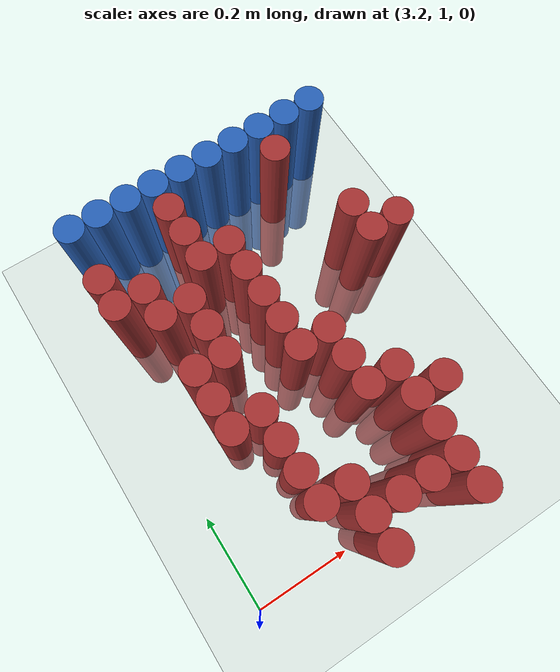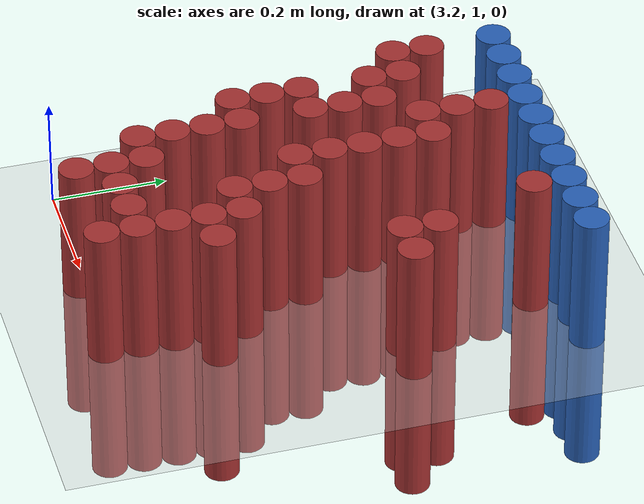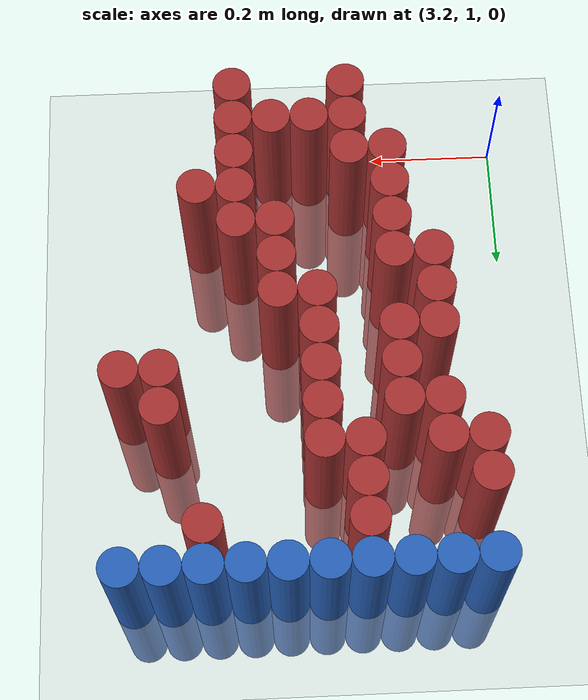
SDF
<sdf version="1.6">
 <world name="default">
  <model name="ground_plane">
   <static>1</static>
   <link name="link">
    <collision name="collision">
     <geometry><plane><normal>0 0 1</normal><size>100 100</size></plane></geometry>
     <surface><friction><ode><mu>100</mu><mu2>50</mu2></ode></friction></surface>
    </collision>
    <visual name="visual">
     <cast_shadows>0</cast_shadows>
     <geometry><plane><normal>0 0 1</normal><size>100 100</size></plane></geometry>
     <material>
      <script><uri>file://media/materials/scripts/gazebo.material</uri><name>Gazebo/Grey</name></script>
     </material>
    </visual>
   </link>
  </model>
  <model name="unit_cylinder_115">
   <static>1</static>
   <pose>3.270000 1.770000 0.000000 0.000000 0.000000 0.000000</pose>
   <link name="link">
    <inertial>
     <mass>1</mass>
     <inertia><ixx>0.145833</ixx><ixy>0</ixy><ixz>0</ixz><iyy>0.145833</iyy><iyz>0</iyz><izz>0.125</izz></inertia>
    </inertial>
    <collision name="collision">
     <geometry><cylinder><radius>0.030000</radius><length>0.5</length></cylinder></geometry>
    </collision>
    <visual name="visual">
     <geometry><cylinder><radius>0.030000</radius><length>0.5</length></cylinder></geometry>
     <material>
      <ambient>0.152000 0.379000 0.720000 1</ambient>
      <diffuse>0.152000 0.379000 0.720000 1</diffuse>
     </material>
     <material>
      <script><name>Gazebo/Grey</name><uri>file://media/materials/scripts/gazebo.material</uri></script>
     </material>
    </visual>
   </link>
  </model>
  <model name="unit_cylinder_116">
   <static>1</static>
   <pose>3.330000 1.770000 0.000000 0.000000 0.000000 0.000000</pose>
   <link name="link">
    <inertial>
     <mass>1</mass>
     <inertia><ixx>0.145833</ixx><ixy>0</ixy><ixz>0</ixz><iyy>0.145833</iyy><iyz>0</iyz><izz>0.125</izz></inertia>
    </inertial>
    <collision name="collision">
     <geometry><cylinder><radius>0.030000</radius><length>0.5</length></cylinder></geometry>
    </collision>
    <visual name="visual">
     <geometry><cylinder><radius>0.030000</radius><length>0.5</length></cylinder></geometry>
     <material>
      <ambient>0.152000 0.379000 0.720000 1</ambient>
      <diffuse>0.152000 0.379000 0.720000 1</diffuse>
     </material>
     <material>
      <script><name>Gazebo/Grey</name><uri>file://media/materials/scripts/gazebo.material</uri></script>
     </material>
    </visual>
   </link>
  </model>
  <model name="unit_cylinder_117">
   <static>1</static>
   <pose>3.390000 1.770000 0.000000 0.000000 0.000000 0.000000</pose>
   <link name="link">
    <inertial>
     <mass>1</mass>
     <inertia><ixx>0.145833</ixx><ixy>0</ixy><ixz>0</ixz><iyy>0.145833</iyy><iyz>0</iyz><izz>0.125</izz></inertia>
    </inertial>
    <collision name="collision">
     <geometry><cylinder><radius>0.030000</radius><length>0.5</length></cylinder></geometry>
    </collision>
    <visual name="visual">
     <geometry><cylinder><radius>0.030000</radius><length>0.5</length></cylinder></geometry>
     <material>
      <ambient>0.152000 0.379000 0.720000 1</ambient>
      <diffuse>0.152000 0.379000 0.720000 1</diffuse>
     </material>
     <material>
      <script><name>Gazebo/Grey</name><uri>file://media/materials/scripts/gazebo.material</uri></script>
     </material>
    </visual>
   </link>
  </model>
  <model name="unit_cylinder_118">
   <static>1</static>
   <pose>3.450000 1.770000 0.000000 0.000000 0.000000 0.000000</pose>
   <link name="link">
    <inertial>
     <mass>1</mass>
     <inertia><ixx>0.145833</ixx><ixy>0</ixy><ixz>0</ixz><iyy>0.145833</iyy><iyz>0</iyz><izz>0.125</izz></inertia>
    </inertial>
    <collision name="collision">
     <geometry><cylinder><radius>0.030000</radius><length>0.5</length></cylinder></geometry>
    </collision>
    <visual name="visual">
     <geometry><cylinder><radius>0.030000</radius><length>0.5</length></cylinder></geometry>
     <material>
      <ambient>0.152000 0.379000 0.720000 1</ambient>
      <diffuse>0.152000 0.379000 0.720000 1</diffuse>
     </material>
     <material>
      <script><name>Gazebo/Grey</name><uri>file://media/materials/scripts/gazebo.material</uri></script>
     </material>
    </visual>
   </link>
  </model>
  <model name="unit_cylinder_119">
   <static>1</static>
   <pose>3.510000 1.770000 0.000000 0.000000 0.000000 0.000000</pose>
   <link name="link">
    <inertial>
     <mass>1</mass>
     <inertia><ixx>0.145833</ixx><ixy>0</ixy><ixz>0</ixz><iyy>0.145833</iyy><iyz>0</iyz><izz>0.125</izz></inertia>
    </inertial>
    <collision name="collision">
     <geometry><cylinder><radius>0.030000</radius><length>0.5</length></cylinder></geometry>
    </collision>
    <visual name="visual">
     <geometry><cylinder><radius>0.030000</radius><length>0.5</length></cylinder></geometry>
     <material>
      <ambient>0.152000 0.379000 0.720000 1</ambient>
      <diffuse>0.152000 0.379000 0.720000 1</diffuse>
     </material>
     <material>
      <script><name>Gazebo/Grey</name><uri>file://media/materials/scripts/gazebo.material</uri></script>
     </material>
    </visual>
   </link>
  </model>
  <model name="unit_cylinder_120">
   <static>1</static>
   <pose>3.570000 1.770000 0.000000 0.000000 0.000000 0.000000</pose>
   <link name="link">
    <inertial>
     <mass>1</mass>
     <inertia><ixx>0.145833</ixx><ixy>0</ixy><ixz>0</ixz><iyy>0.145833</iyy><iyz>0</iyz><izz>0.125</izz></inertia>
    </inertial>
    <collision name="collision">
     <geometry><cylinder><radius>0.030000</radius><length>0.5</length></cylinder></geometry>
    </collision>
    <visual name="visual">
     <geometry><cylinder><radius>0.030000</radius><length>0.5</length></cylinder></geometry>
     <material>
      <ambient>0.152000 0.379000 0.720000 1</ambient>
      <diffuse>0.152000 0.379000 0.720000 1</diffuse>
     </material>
     <material>
      <script><name>Gazebo/Grey</name><uri>file://media/materials/scripts/gazebo.material</uri></script>
     </material>
    </visual>
   </link>
  </model>
  <model name="unit_cylinder_121">
   <static>1</static>
   <pose>3.630000 1.770000 0.000000 0.000000 0.000000 0.000000</pose>
   <link name="link">
    <inertial>
     <mass>1</mass>
     <inertia><ixx>0.145833</ixx><ixy>0</ixy><ixz>0</ixz><iyy>0.145833</iyy><iyz>0</iyz><izz>0.125</izz></inertia>
    </inertial>
    <collision name="collision">
     <geometry><cylinder><radius>0.030000</radius><length>0.5</length></cylinder></geometry>
    </collision>
    <visual name="visual">
     <geometry><cylinder><radius>0.030000</radius><length>0.5</length></cylinder></geometry>
     <material>
      <ambient>0.152000 0.379000 0.720000 1</ambient>
      <diffuse>0.152000 0.379000 0.720000 1</diffuse>
     </material>
     <material>
      <script><name>Gazebo/Grey</name><uri>file://media/materials/scripts/gazebo.material</uri></script>
     </material>
    </visual>
   </link>
  </model>
  <model name="unit_cylinder_122">
   <static>1</static>
   <pose>3.690000 1.770000 0.000000 0.000000 0.000000 0.000000</pose>
   <link name="link">
    <inertial>
     <mass>1</mass>
     <inertia><ixx>0.145833</ixx><ixy>0</ixy><ixz>0</ixz><iyy>0.145833</iyy><iyz>0</iyz><izz>0.125</izz></inertia>
    </inertial>
    <collision name="collision">
     <geometry><cylinder><radius>0.030000</radius><length>0.5</length></cylinder></geometry>
    </collision>
    <visual name="visual">
     <geometry><cylinder><radius>0.030000</radius><length>0.5</length></cylinder></geometry>
     <material>
      <ambient>0.152000 0.379000 0.720000 1</ambient>
      <diffuse>0.152000 0.379000 0.720000 1</diffuse>
     </material>
     <material>
      <script><name>Gazebo/Grey</name><uri>file://media/materials/scripts/gazebo.material</uri></script>
     </material>
    </visual>
   </link>
  </model>
  <model name="unit_cylinder_123">
   <static>1</static>
   <pose>3.750000 1.770000 0.000000 0.000000 0.000000 0.000000</pose>
   <link name="link">
    <inertial>
     <mass>1</mass>
     <inertia><ixx>0.145833</ixx><ixy>0</ixy><ixz>0</ixz><iyy>0.145833</iyy><iyz>0</iyz><izz>0.125</izz></inertia>
    </inertial>
    <collision name="collision">
     <geometry><cylinder><radius>0.030000</radius><length>0.5</length></cylinder></geometry>
    </collision>
    <visual name="visual">
     <geometry><cylinder><radius>0.030000</radius><length>0.5</length></cylinder></geometry>
     <material>
      <ambient>0.152000 0.379000 0.720000 1</ambient>
      <diffuse>0.152000 0.379000 0.720000 1</diffuse>
     </material>
     <material>
      <script><name>Gazebo/Grey</name><uri>file://media/materials/scripts/gazebo.material</uri></script>
     </material>
    </visual>
   </link>
  </model>
  <model name="unit_cylinder_124">
   <static>1</static>
   <pose>3.810000 1.770000 0.000000 0.000000 0.000000 0.000000</pose>
   <link name="link">
    <inertial>
     <mass>1</mass>
     <inertia><ixx>0.145833</ixx><ixy>0</ixy><ixz>0</ixz><iyy>0.145833</iyy><iyz>0</iyz><izz>0.125</izz></inertia>
    </inertial>
    <collision name="collision">
     <geometry><cylinder><radius>0.030000</radius><length>0.5</length></cylinder></geometry>
    </collision>
    <visual name="visual">
     <geometry><cylinder><radius>0.030000</radius><length>0.5</length></cylinder></geometry>
     <material>
      <ambient>0.152000 0.379000 0.720000 1</ambient>
      <diffuse>0.152000 0.379000 0.720000 1</diffuse>
     </material>
     <material>
      <script><name>Gazebo/Grey</name><uri>file://media/materials/scripts/gazebo.material</uri></script>
     </material>
    </visual>
   </link>
  </model>
  <model name="unit_cylinder_135">
   <static>1</static>
   <pose>3.450000 1.710000 0.000000 0.000000 0.000000 0.000000</pose>
   <link name="link">
    <inertial>
     <mass>1</mass>
     <inertia><ixx>0.145833</ixx><ixy>0</ixy><ixz>0</ixz><iyy>0.145833</iyy><iyz>0</iyz><izz>0.125</izz></inertia>
    </inertial>
    <collision name="collision">
     <geometry><cylinder><radius>0.030000</radius><length>0.5</length></cylinder></geometry>
    </collision>
    <visual name="visual">
     <geometry><cylinder><radius>0.030000</radius><length>0.5</length></cylinder></geometry>
     <material>
      <ambient>0.648000 0.192000 0.192000 1</ambient>
      <diffuse>0.648000 0.192000 0.192000 1</diffuse>
     </material>
     <material>
      <script><name>Gazebo/Grey</name><uri>file://media/materials/scripts/gazebo.material</uri></script>
     </material>
    </visual>
   </link>
  </model>
  <model name="unit_cylinder_136">
   <static>1</static>
   <pose>3.690000 1.710000 0.000000 0.000000 0.000000 0.000000</pose>
   <link name="link">
    <inertial>
     <mass>1</mass>
     <inertia><ixx>0.145833</ixx><ixy>0</ixy><ixz>0</ixz><iyy>0.145833</iyy><iyz>0</iyz><izz>0.125</izz></inertia>
    </inertial>
    <collision name="collision">
     <geometry><cylinder><radius>0.030000</radius><length>0.5</length></cylinder></geometry>
    </collision>
    <visual name="visual">
     <geometry><cylinder><radius>0.030000</radius><length>0.5</length></cylinder></geometry>
     <material>
      <ambient>0.648000 0.192000 0.192000 1</ambient>
      <diffuse>0.648000 0.192000 0.192000 1</diffuse>
     </material>
     <material>
      <script><name>Gazebo/Grey</name><uri>file://media/materials/scripts/gazebo.material</uri></script>
     </material>
    </visual>
   </link>
  </model>
  <model name="unit_cylinder_143">
   <static>1</static>
   <pose>3.270000 1.650000 0.000000 0.000000 0.000000 0.000000</pose>
   <link name="link">
    <inertial>
     <mass>1</mass>
     <inertia><ixx>0.145833</ixx><ixy>0</ixy><ixz>0</ixz><iyy>0.145833</iyy><iyz>0</iyz><izz>0.125</izz></inertia>
    </inertial>
    <collision name="collision">
     <geometry><cylinder><radius>0.030000</radius><length>0.5</length></cylinder></geometry>
    </collision>
    <visual name="visual">
     <geometry><cylinder><radius>0.030000</radius><length>0.5</length></cylinder></geometry>
     <material>
      <ambient>0.648000 0.192000 0.192000 1</ambient>
      <diffuse>0.648000 0.192000 0.192000 1</diffuse>
     </material>
     <material>
      <script><name>Gazebo/Grey</name><uri>file://media/materials/scripts/gazebo.material</uri></script>
     </material>
    </visual>
   </link>
  </model>
  <model name="unit_cylinder_144">
   <static>1</static>
   <pose>3.450000 1.650000 0.000000 0.000000 0.000000 0.000000</pose>
   <link name="link">
    <inertial>
     <mass>1</mass>
     <inertia><ixx>0.145833</ixx><ixy>0</ixy><ixz>0</ixz><iyy>0.145833</iyy><iyz>0</iyz><izz>0.125</izz></inertia>
    </inertial>
    <collision name="collision">
     <geometry><cylinder><radius>0.030000</radius><length>0.5</length></cylinder></geometry>
    </collision>
    <visual name="visual">
     <geometry><cylinder><radius>0.030000</radius><length>0.5</length></cylinder></geometry>
     <material>
      <ambient>0.648000 0.192000 0.192000 1</ambient>
      <diffuse>0.648000 0.192000 0.192000 1</diffuse>
     </material>
     <material>
      <script><name>Gazebo/Grey</name><uri>file://media/materials/scripts/gazebo.material</uri></script>
     </material>
    </visual>
   </link>
  </model>
  <model name="unit_cylinder_150">
   <static>1</static>
   <pose>3.270000 1.590000 0.000000 0.000000 0.000000 0.000000</pose>
   <link name="link">
    <inertial>
     <mass>1</mass>
     <inertia><ixx>0.145833</ixx><ixy>0</ixy><ixz>0</ixz><iyy>0.145833</iyy><iyz>0</iyz><izz>0.125</izz></inertia>
    </inertial>
    <collision name="collision">
     <geometry><cylinder><radius>0.030000</radius><length>0.5</length></cylinder></geometry>
    </collision>
    <visual name="visual">
     <geometry><cylinder><radius>0.030000</radius><length>0.5</length></cylinder></geometry>
     <material>
      <ambient>0.648000 0.192000 0.192000 1</ambient>
      <diffuse>0.648000 0.192000 0.192000 1</diffuse>
     </material>
     <material>
      <script><name>Gazebo/Grey</name><uri>file://media/materials/scripts/gazebo.material</uri></script>
     </material>
    </visual>
   </link>
  </model>
  <model name="unit_cylinder_151">
   <static>1</static>
   <pose>3.330000 1.590000 0.000000 0.000000 0.000000 0.000000</pose>
   <link name="link">
    <inertial>
     <mass>1</mass>
     <inertia><ixx>0.145833</ixx><ixy>0</ixy><ixz>0</ixz><iyy>0.145833</iyy><iyz>0</iyz><izz>0.125</izz></inertia>
    </inertial>
    <collision name="collision">
     <geometry><cylinder><radius>0.030000</radius><length>0.5</length></cylinder></geometry>
    </collision>
    <visual name="visual">
     <geometry><cylinder><radius>0.030000</radius><length>0.5</length></cylinder></geometry>
     <material>
      <ambient>0.648000 0.192000 0.192000 1</ambient>
      <diffuse>0.648000 0.192000 0.192000 1</diffuse>
     </material>
     <material>
      <script><name>Gazebo/Grey</name><uri>file://media/materials/scripts/gazebo.material</uri></script>
     </material>
    </visual>
   </link>
  </model>
  <model name="unit_cylinder_152">
   <static>1</static>
   <pose>3.450000 1.590000 0.000000 0.000000 0.000000 0.000000</pose>
   <link name="link">
    <inertial>
     <mass>1</mass>
     <inertia><ixx>0.145833</ixx><ixy>0</ixy><ixz>0</ixz><iyy>0.145833</iyy><iyz>0</iyz><izz>0.125</izz></inertia>
    </inertial>
    <collision name="collision">
     <geometry><cylinder><radius>0.030000</radius><length>0.5</length></cylinder></geometry>
    </collision>
    <visual name="visual">
     <geometry><cylinder><radius>0.030000</radius><length>0.5</length></cylinder></geometry>
     <material>
      <ambient>0.648000 0.192000 0.192000 1</ambient>
      <diffuse>0.648000 0.192000 0.192000 1</diffuse>
     </material>
     <material>
      <script><name>Gazebo/Grey</name><uri>file://media/materials/scripts/gazebo.material</uri></script>
     </material>
    </visual>
   </link>
  </model>
  <model name="unit_cylinder_153">
   <static>1</static>
   <pose>3.510000 1.590000 0.000000 0.000000 0.000000 0.000000</pose>
   <link name="link">
    <inertial>
     <mass>1</mass>
     <inertia><ixx>0.145833</ixx><ixy>0</ixy><ixz>0</ixz><iyy>0.145833</iyy><iyz>0</iyz><izz>0.125</izz></inertia>
    </inertial>
    <collision name="collision">
     <geometry><cylinder><radius>0.030000</radius><length>0.5</length></cylinder></geometry>
    </collision>
    <visual name="visual">
     <geometry><cylinder><radius>0.030000</radius><length>0.5</length></cylinder></geometry>
     <material>
      <ambient>0.648000 0.192000 0.192000 1</ambient>
      <diffuse>0.648000 0.192000 0.192000 1</diffuse>
     </material>
     <material>
      <script><name>Gazebo/Grey</name><uri>file://media/materials/scripts/gazebo.material</uri></script>
     </material>
    </visual>
   </link>
  </model>
  <model name="unit_cylinder_158">
   <static>1</static>
   <pose>3.330000 1.530000 0.000000 0.000000 0.000000 0.000000</pose>
   <link name="link">
    <inertial>
     <mass>1</mass>
     <inertia><ixx>0.145833</ixx><ixy>0</ixy><ixz>0</ixz><iyy>0.145833</iyy><iyz>0</iyz><izz>0.125</izz></inertia>
    </inertial>
    <collision name="collision">
     <geometry><cylinder><radius>0.030000</radius><length>0.5</length></cylinder></geometry>
    </collision>
    <visual name="visual">
     <geometry><cylinder><radius>0.030000</radius><length>0.5</length></cylinder></geometry>
     <material>
      <ambient>0.648000 0.192000 0.192000 1</ambient>
      <diffuse>0.648000 0.192000 0.192000 1</diffuse>
     </material>
     <material>
      <script><name>Gazebo/Grey</name><uri>file://media/materials/scripts/gazebo.material</uri></script>
     </material>
    </visual>
   </link>
  </model>
  <model name="unit_cylinder_159">
   <static>1</static>
   <pose>3.390000 1.530000 0.000000 0.000000 0.000000 0.000000</pose>
   <link name="link">
    <inertial>
     <mass>1</mass>
     <inertia><ixx>0.145833</ixx><ixy>0</ixy><ixz>0</ixz><iyy>0.145833</iyy><iyz>0</iyz><izz>0.125</izz></inertia>
    </inertial>
    <collision name="collision">
     <geometry><cylinder><radius>0.030000</radius><length>0.5</length></cylinder></geometry>
    </collision>
    <visual name="visual">
     <geometry><cylinder><radius>0.030000</radius><length>0.5</length></cylinder></geometry>
     <material>
      <ambient>0.648000 0.192000 0.192000 1</ambient>
      <diffuse>0.648000 0.192000 0.192000 1</diffuse>
     </material>
     <material>
      <script><name>Gazebo/Grey</name><uri>file://media/materials/scripts/gazebo.material</uri></script>
     </material>
    </visual>
   </link>
  </model>
  <model name="unit_cylinder_160">
   <static>1</static>
   <pose>3.510000 1.530000 0.000000 0.000000 0.000000 0.000000</pose>
   <link name="link">
    <inertial>
     <mass>1</mass>
     <inertia><ixx>0.145833</ixx><ixy>0</ixy><ixz>0</ixz><iyy>0.145833</iyy><iyz>0</iyz><izz>0.125</izz></inertia>
    </inertial>
    <collision name="collision">
     <geometry><cylinder><radius>0.030000</radius><length>0.5</length></cylinder></geometry>
    </collision>
    <visual name="visual">
     <geometry><cylinder><radius>0.030000</radius><length>0.5</length></cylinder></geometry>
     <material>
      <ambient>0.648000 0.192000 0.192000 1</ambient>
      <diffuse>0.648000 0.192000 0.192000 1</diffuse>
     </material>
     <material>
      <script><name>Gazebo/Grey</name><uri>file://media/materials/scripts/gazebo.material</uri></script>
     </material>
    </visual>
   </link>
  </model>
  <model name="unit_cylinder_161">
   <static>1</static>
   <pose>3.750000 1.530000 0.000000 0.000000 0.000000 0.000000</pose>
   <link name="link">
    <inertial>
     <mass>1</mass>
     <inertia><ixx>0.145833</ixx><ixy>0</ixy><ixz>0</ixz><iyy>0.145833</iyy><iyz>0</iyz><izz>0.125</izz></inertia>
    </inertial>
    <collision name="collision">
     <geometry><cylinder><radius>0.030000</radius><length>0.5</length></cylinder></geometry>
    </collision>
    <visual name="visual">
     <geometry><cylinder><radius>0.030000</radius><length>0.5</length></cylinder></geometry>
     <material>
      <ambient>0.648000 0.192000 0.192000 1</ambient>
      <diffuse>0.648000 0.192000 0.192000 1</diffuse>
     </material>
     <material>
      <script><name>Gazebo/Grey</name><uri>file://media/materials/scripts/gazebo.material</uri></script>
     </material>
    </visual>
   </link>
  </model>
  <model name="unit_cylinder_166">
   <static>1</static>
   <pose>3.390000 1.470000 0.000000 0.000000 0.000000 0.000000</pose>
   <link name="link">
    <inertial>
     <mass>1</mass>
     <inertia><ixx>0.145833</ixx><ixy>0</ixy><ixz>0</ixz><iyy>0.145833</iyy><iyz>0</iyz><izz>0.125</izz></inertia>
    </inertial>
    <collision name="collision">
     <geometry><cylinder><radius>0.030000</radius><length>0.5</length></cylinder></geometry>
    </collision>
    <visual name="visual">
     <geometry><cylinder><radius>0.030000</radius><length>0.5</length></cylinder></geometry>
     <material>
      <ambient>0.648000 0.192000 0.192000 1</ambient>
      <diffuse>0.648000 0.192000 0.192000 1</diffuse>
     </material>
     <material>
      <script><name>Gazebo/Grey</name><uri>file://media/materials/scripts/gazebo.material</uri></script>
     </material>
    </visual>
   </link>
  </model>
  <model name="unit_cylinder_167">
   <static>1</static>
   <pose>3.510000 1.470000 0.000000 0.000000 0.000000 0.000000</pose>
   <link name="link">
    <inertial>
     <mass>1</mass>
     <inertia><ixx>0.145833</ixx><ixy>0</ixy><ixz>0</ixz><iyy>0.145833</iyy><iyz>0</iyz><izz>0.125</izz></inertia>
    </inertial>
    <collision name="collision">
     <geometry><cylinder><radius>0.030000</radius><length>0.5</length></cylinder></geometry>
    </collision>
    <visual name="visual">
     <geometry><cylinder><radius>0.030000</radius><length>0.5</length></cylinder></geometry>
     <material>
      <ambient>0.648000 0.192000 0.192000 1</ambient>
      <diffuse>0.648000 0.192000 0.192000 1</diffuse>
     </material>
     <material>
      <script><name>Gazebo/Grey</name><uri>file://media/materials/scripts/gazebo.material</uri></script>
     </material>
    </visual>
   </link>
  </model>
  <model name="unit_cylinder_168">
   <static>1</static>
   <pose>3.750000 1.470000 0.000000 0.000000 0.000000 0.000000</pose>
   <link name="link">
    <inertial>
     <mass>1</mass>
     <inertia><ixx>0.145833</ixx><ixy>0</ixy><ixz>0</ixz><iyy>0.145833</iyy><iyz>0</iyz><izz>0.125</izz></inertia>
    </inertial>
    <collision name="collision">
     <geometry><cylinder><radius>0.030000</radius><length>0.5</length></cylinder></geometry>
    </collision>
    <visual name="visual">
     <geometry><cylinder><radius>0.030000</radius><length>0.5</length></cylinder></geometry>
     <material>
      <ambient>0.648000 0.192000 0.192000 1</ambient>
      <diffuse>0.648000 0.192000 0.192000 1</diffuse>
     </material>
     <material>
      <script><name>Gazebo/Grey</name><uri>file://media/materials/scripts/gazebo.material</uri></script>
     </material>
    </visual>
   </link>
  </model>
  <model name="unit_cylinder_169">
   <static>1</static>
   <pose>3.810000 1.470000 0.000000 0.000000 0.000000 0.000000</pose>
   <link name="link">
    <inertial>
     <mass>1</mass>
     <inertia><ixx>0.145833</ixx><ixy>0</ixy><ixz>0</ixz><iyy>0.145833</iyy><iyz>0</iyz><izz>0.125</izz></inertia>
    </inertial>
    <collision name="collision">
     <geometry><cylinder><radius>0.030000</radius><length>0.5</length></cylinder></geometry>
    </collision>
    <visual name="visual">
     <geometry><cylinder><radius>0.030000</radius><length>0.5</length></cylinder></geometry>
     <material>
      <ambient>0.648000 0.192000 0.192000 1</ambient>
      <diffuse>0.648000 0.192000 0.192000 1</diffuse>
     </material>
     <material>
      <script><name>Gazebo/Grey</name><uri>file://media/materials/scripts/gazebo.material</uri></script>
     </material>
    </visual>
   </link>
  </model>
  <model name="unit_cylinder_174">
   <static>1</static>
   <pose>3.330000 1.410000 0.000000 0.000000 0.000000 0.000000</pose>
   <link name="link">
    <inertial>
     <mass>1</mass>
     <inertia><ixx>0.145833</ixx><ixy>0</ixy><ixz>0</ixz><iyy>0.145833</iyy><iyz>0</iyz><izz>0.125</izz></inertia>
    </inertial>
    <collision name="collision">
     <geometry><cylinder><radius>0.030000</radius><length>0.5</length></cylinder></geometry>
    </collision>
    <visual name="visual">
     <geometry><cylinder><radius>0.030000</radius><length>0.5</length></cylinder></geometry>
     <material>
      <ambient>0.648000 0.192000 0.192000 1</ambient>
      <diffuse>0.648000 0.192000 0.192000 1</diffuse>
     </material>
     <material>
      <script><name>Gazebo/Grey</name><uri>file://media/materials/scripts/gazebo.material</uri></script>
     </material>
    </visual>
   </link>
  </model>
  <model name="unit_cylinder_175">
   <static>1</static>
   <pose>3.390000 1.410000 0.000000 0.000000 0.000000 0.000000</pose>
   <link name="link">
    <inertial>
     <mass>1</mass>
     <inertia><ixx>0.145833</ixx><ixy>0</ixy><ixz>0</ixz><iyy>0.145833</iyy><iyz>0</iyz><izz>0.125</izz></inertia>
    </inertial>
    <collision name="collision">
     <geometry><cylinder><radius>0.030000</radius><length>0.5</length></cylinder></geometry>
    </collision>
    <visual name="visual">
     <geometry><cylinder><radius>0.030000</radius><length>0.5</length></cylinder></geometry>
     <material>
      <ambient>0.648000 0.192000 0.192000 1</ambient>
      <diffuse>0.648000 0.192000 0.192000 1</diffuse>
     </material>
     <material>
      <script><name>Gazebo/Grey</name><uri>file://media/materials/scripts/gazebo.material</uri></script>
     </material>
    </visual>
   </link>
  </model>
  <model name="unit_cylinder_176">
   <static>1</static>
   <pose>3.510000 1.410000 0.000000 0.000000 0.000000 0.000000</pose>
   <link name="link">
    <inertial>
     <mass>1</mass>
     <inertia><ixx>0.145833</ixx><ixy>0</ixy><ixz>0</ixz><iyy>0.145833</iyy><iyz>0</iyz><izz>0.125</izz></inertia>
    </inertial>
    <collision name="collision">
     <geometry><cylinder><radius>0.030000</radius><length>0.5</length></cylinder></geometry>
    </collision>
    <visual name="visual">
     <geometry><cylinder><radius>0.030000</radius><length>0.5</length></cylinder></geometry>
     <material>
      <ambient>0.648000 0.192000 0.192000 1</ambient>
      <diffuse>0.648000 0.192000 0.192000 1</diffuse>
     </material>
     <material>
      <script><name>Gazebo/Grey</name><uri>file://media/materials/scripts/gazebo.material</uri></script>
     </material>
    </visual>
   </link>
  </model>
  <model name="unit_cylinder_178">
   <static>1</static>
   <pose>3.330000 1.350000 0.000000 0.000000 0.000000 0.000000</pose>
   <link name="link">
    <inertial>
     <mass>1</mass>
     <inertia><ixx>0.145833</ixx><ixy>0</ixy><ixz>0</ixz><iyy>0.145833</iyy><iyz>0</iyz><izz>0.125</izz></inertia>
    </inertial>
    <collision name="collision">
     <geometry><cylinder><radius>0.030000</radius><length>0.5</length></cylinder></geometry>
    </collision>
    <visual name="visual">
     <geometry><cylinder><radius>0.030000</radius><length>0.5</length></cylinder></geometry>
     <material>
      <ambient>0.648000 0.192000 0.192000 1</ambient>
      <diffuse>0.648000 0.192000 0.192000 1</diffuse>
     </material>
     <material>
      <script><name>Gazebo/Grey</name><uri>file://media/materials/scripts/gazebo.material</uri></script>
     </material>
    </visual>
   </link>
  </model>
  <model name="unit_cylinder_179">
   <static>1</static>
   <pose>3.510000 1.350000 0.000000 0.000000 0.000000 0.000000</pose>
   <link name="link">
    <inertial>
     <mass>1</mass>
     <inertia><ixx>0.145833</ixx><ixy>0</ixy><ixz>0</ixz><iyy>0.145833</iyy><iyz>0</iyz><izz>0.125</izz></inertia>
    </inertial>
    <collision name="collision">
     <geometry><cylinder><radius>0.030000</radius><length>0.5</length></cylinder></geometry>
    </collision>
    <visual name="visual">
     <geometry><cylinder><radius>0.030000</radius><length>0.5</length></cylinder></geometry>
     <material>
      <ambient>0.648000 0.192000 0.192000 1</ambient>
      <diffuse>0.648000 0.192000 0.192000 1</diffuse>
     </material>
     <material>
      <script><name>Gazebo/Grey</name><uri>file://media/materials/scripts/gazebo.material</uri></script>
     </material>
    </visual>
   </link>
  </model>
  <model name="unit_cylinder_180">
   <static>1</static>
   <pose>3.570000 1.350000 0.000000 0.000000 0.000000 0.000000</pose>
   <link name="link">
    <inertial>
     <mass>1</mass>
     <inertia><ixx>0.145833</ixx><ixy>0</ixy><ixz>0</ixz><iyy>0.145833</iyy><iyz>0</iyz><izz>0.125</izz></inertia>
    </inertial>
    <collision name="collision">
     <geometry><cylinder><radius>0.030000</radius><length>0.5</length></cylinder></geometry>
    </collision>
    <visual name="visual">
     <geometry><cylinder><radius>0.030000</radius><length>0.5</length></cylinder></geometry>
     <material>
      <ambient>0.648000 0.192000 0.192000 1</ambient>
      <diffuse>0.648000 0.192000 0.192000 1</diffuse>
     </material>
     <material>
      <script><name>Gazebo/Grey</name><uri>file://media/materials/scripts/gazebo.material</uri></script>
     </material>
    </visual>
   </link>
  </model>
  <model name="unit_cylinder_182">
   <static>1</static>
   <pose>3.330000 1.290000 0.000000 0.000000 0.000000 0.000000</pose>
   <link name="link">
    <inertial>
     <mass>1</mass>
     <inertia><ixx>0.145833</ixx><ixy>0</ixy><ixz>0</ixz><iyy>0.145833</iyy><iyz>0</iyz><izz>0.125</izz></inertia>
    </inertial>
    <collision name="collision">
     <geometry><cylinder><radius>0.030000</radius><length>0.5</length></cylinder></geometry>
    </collision>
    <visual name="visual">
     <geometry><cylinder><radius>0.030000</radius><length>0.5</length></cylinder></geometry>
     <material>
      <ambient>0.648000 0.192000 0.192000 1</ambient>
      <diffuse>0.648000 0.192000 0.192000 1</diffuse>
     </material>
     <material>
      <script><name>Gazebo/Grey</name><uri>file://media/materials/scripts/gazebo.material</uri></script>
     </material>
    </visual>
   </link>
  </model>
  <model name="unit_cylinder_183">
   <static>1</static>
   <pose>3.390000 1.290000 0.000000 0.000000 0.000000 0.000000</pose>
   <link name="link">
    <inertial>
     <mass>1</mass>
     <inertia><ixx>0.145833</ixx><ixy>0</ixy><ixz>0</ixz><iyy>0.145833</iyy><iyz>0</iyz><izz>0.125</izz></inertia>
    </inertial>
    <collision name="collision">
     <geometry><cylinder><radius>0.030000</radius><length>0.5</length></cylinder></geometry>
    </collision>
    <visual name="visual">
     <geometry><cylinder><radius>0.030000</radius><length>0.5</length></cylinder></geometry>
     <material>
      <ambient>0.648000 0.192000 0.192000 1</ambient>
      <diffuse>0.648000 0.192000 0.192000 1</diffuse>
     </material>
     <material>
      <script><name>Gazebo/Grey</name><uri>file://media/materials/scripts/gazebo.material</uri></script>
     </material>
    </visual>
   </link>
  </model>
  <model name="unit_cylinder_184">
   <static>1</static>
   <pose>3.570000 1.290000 0.000000 0.000000 0.000000 0.000000</pose>
   <link name="link">
    <inertial>
     <mass>1</mass>
     <inertia><ixx>0.145833</ixx><ixy>0</ixy><ixz>0</ixz><iyy>0.145833</iyy><iyz>0</iyz><izz>0.125</izz></inertia>
    </inertial>
    <collision name="collision">
     <geometry><cylinder><radius>0.030000</radius><length>0.5</length></cylinder></geometry>
    </collision>
    <visual name="visual">
     <geometry><cylinder><radius>0.030000</radius><length>0.5</length></cylinder></geometry>
     <material>
      <ambient>0.648000 0.192000 0.192000 1</ambient>
      <diffuse>0.648000 0.192000 0.192000 1</diffuse>
     </material>
     <material>
      <script><name>Gazebo/Grey</name><uri>file://media/materials/scripts/gazebo.material</uri></script>
     </material>
    </visual>
   </link>
  </model>
  <model name="unit_cylinder_187">
   <static>1</static>
   <pose>3.390000 1.230000 0.000000 0.000000 0.000000 0.000000</pose>
   <link name="link">
    <inertial>
     <mass>1</mass>
     <inertia><ixx>0.145833</ixx><ixy>0</ixy><ixz>0</ixz><iyy>0.145833</iyy><iyz>0</iyz><izz>0.125</izz></inertia>
    </inertial>
    <collision name="collision">
     <geometry><cylinder><radius>0.030000</radius><length>0.5</length></cylinder></geometry>
    </collision>
    <visual name="visual">
     <geometry><cylinder><radius>0.030000</radius><length>0.5</length></cylinder></geometry>
     <material>
      <ambient>0.648000 0.192000 0.192000 1</ambient>
      <diffuse>0.648000 0.192000 0.192000 1</diffuse>
     </material>
     <material>
      <script><name>Gazebo/Grey</name><uri>file://media/materials/scripts/gazebo.material</uri></script>
     </material>
    </visual>
   </link>
  </model>
  <model name="unit_cylinder_188">
   <static>1</static>
   <pose>3.570000 1.230000 0.000000 0.000000 0.000000 0.000000</pose>
   <link name="link">
    <inertial>
     <mass>1</mass>
     <inertia><ixx>0.145833</ixx><ixy>0</ixy><ixz>0</ixz><iyy>0.145833</iyy><iyz>0</iyz><izz>0.125</izz></inertia>
    </inertial>
    <collision name="collision">
     <geometry><cylinder><radius>0.030000</radius><length>0.5</length></cylinder></geometry>
    </collision>
    <visual name="visual">
     <geometry><cylinder><radius>0.030000</radius><length>0.5</length></cylinder></geometry>
     <material>
      <ambient>0.648000 0.192000 0.192000 1</ambient>
      <diffuse>0.648000 0.192000 0.192000 1</diffuse>
     </material>
     <material>
      <script><name>Gazebo/Grey</name><uri>file://media/materials/scripts/gazebo.material</uri></script>
     </material>
    </visual>
   </link>
  </model>
  <model name="unit_cylinder_189">
   <static>1</static>
   <pose>3.630000 1.230000 0.000000 0.000000 0.000000 0.000000</pose>
   <link name="link">
    <inertial>
     <mass>1</mass>
     <inertia><ixx>0.145833</ixx><ixy>0</ixy><ixz>0</ixz><iyy>0.145833</iyy><iyz>0</iyz><izz>0.125</izz></inertia>
    </inertial>
    <collision name="collision">
     <geometry><cylinder><radius>0.030000</radius><length>0.5</length></cylinder></geometry>
    </collision>
    <visual name="visual">
     <geometry><cylinder><radius>0.030000</radius><length>0.5</length></cylinder></geometry>
     <material>
      <ambient>0.648000 0.192000 0.192000 1</ambient>
      <diffuse>0.648000 0.192000 0.192000 1</diffuse>
     </material>
     <material>
      <script><name>Gazebo/Grey</name><uri>file://media/materials/scripts/gazebo.material</uri></script>
     </material>
    </visual>
   </link>
  </model>
  <model name="unit_cylinder_194">
   <static>1</static>
   <pose>3.390000 1.170000 0.000000 0.000000 0.000000 0.000000</pose>
   <link name="link">
    <inertial>
     <mass>1</mass>
     <inertia><ixx>0.145833</ixx><ixy>0</ixy><ixz>0</ixz><iyy>0.145833</iyy><iyz>0</iyz><izz>0.125</izz></inertia>
    </inertial>
    <collision name="collision">
     <geometry><cylinder><radius>0.030000</radius><length>0.5</length></cylinder></geometry>
    </collision>
    <visual name="visual">
     <geometry><cylinder><radius>0.030000</radius><length>0.5</length></cylinder></geometry>
     <material>
      <ambient>0.648000 0.192000 0.192000 1</ambient>
      <diffuse>0.648000 0.192000 0.192000 1</diffuse>
     </material>
     <material>
      <script><name>Gazebo/Grey</name><uri>file://media/materials/scripts/gazebo.material</uri></script>
     </material>
    </visual>
   </link>
  </model>
  <model name="unit_cylinder_195">
   <static>1</static>
   <pose>3.630000 1.170000 0.000000 0.000000 0.000000 0.000000</pose>
   <link name="link">
    <inertial>
     <mass>1</mass>
     <inertia><ixx>0.145833</ixx><ixy>0</ixy><ixz>0</ixz><iyy>0.145833</iyy><iyz>0</iyz><izz>0.125</izz></inertia>
    </inertial>
    <collision name="collision">
     <geometry><cylinder><radius>0.030000</radius><length>0.5</length></cylinder></geometry>
    </collision>
    <visual name="visual">
     <geometry><cylinder><radius>0.030000</radius><length>0.5</length></cylinder></geometry>
     <material>
      <ambient>0.648000 0.192000 0.192000 1</ambient>
      <diffuse>0.648000 0.192000 0.192000 1</diffuse>
     </material>
     <material>
      <script><name>Gazebo/Grey</name><uri>file://media/materials/scripts/gazebo.material</uri></script>
     </material>
    </visual>
   </link>
  </model>
  <model name="unit_cylinder_196">
   <static>1</static>
   <pose>3.690000 1.170000 0.000000 0.000000 0.000000 0.000000</pose>
   <link name="link">
    <inertial>
     <mass>1</mass>
     <inertia><ixx>0.145833</ixx><ixy>0</ixy><ixz>0</ixz><iyy>0.145833</iyy><iyz>0</iyz><izz>0.125</izz></inertia>
    </inertial>
    <collision name="collision">
     <geometry><cylinder><radius>0.030000</radius><length>0.5</length></cylinder></geometry>
    </collision>
    <visual name="visual">
     <geometry><cylinder><radius>0.030000</radius><length>0.5</length></cylinder></geometry>
     <material>
      <ambient>0.648000 0.192000 0.192000 1</ambient>
      <diffuse>0.648000 0.192000 0.192000 1</diffuse>
     </material>
     <material>
      <script><name>Gazebo/Grey</name><uri>file://media/materials/scripts/gazebo.material</uri></script>
     </material>
    </visual>
   </link>
  </model>
  <model name="unit_cylinder_200">
   <static>1</static>
   <pose>3.390000 1.110000 0.000000 0.000000 0.000000 0.000000</pose>
   <link name="link">
    <inertial>
     <mass>1</mass>
     <inertia><ixx>0.145833</ixx><ixy>0</ixy><ixz>0</ixz><iyy>0.145833</iyy><iyz>0</iyz><izz>0.125</izz></inertia>
    </inertial>
    <collision name="collision">
     <geometry><cylinder><radius>0.030000</radius><length>0.5</length></cylinder></geometry>
    </collision>
    <visual name="visual">
     <geometry><cylinder><radius>0.030000</radius><length>0.5</length></cylinder></geometry>
     <material>
      <ambient>0.648000 0.192000 0.192000 1</ambient>
      <diffuse>0.648000 0.192000 0.192000 1</diffuse>
     </material>
     <material>
      <script><name>Gazebo/Grey</name><uri>file://media/materials/scripts/gazebo.material</uri></script>
     </material>
    </visual>
   </link>
  </model>
  <model name="unit_cylinder_201">
   <static>1</static>
   <pose>3.450000 1.110000 0.000000 0.000000 0.000000 0.000000</pose>
   <link name="link">
    <inertial>
     <mass>1</mass>
     <inertia><ixx>0.145833</ixx><ixy>0</ixy><ixz>0</ixz><iyy>0.145833</iyy><iyz>0</iyz><izz>0.125</izz></inertia>
    </inertial>
    <collision name="collision">
     <geometry><cylinder><radius>0.030000</radius><length>0.5</length></cylinder></geometry>
    </collision>
    <visual name="visual">
     <geometry><cylinder><radius>0.030000</radius><length>0.5</length></cylinder></geometry>
     <material>
      <ambient>0.648000 0.192000 0.192000 1</ambient>
      <diffuse>0.648000 0.192000 0.192000 1</diffuse>
     </material>
     <material>
      <script><name>Gazebo/Grey</name><uri>file://media/materials/scripts/gazebo.material</uri></script>
     </material>
    </visual>
   </link>
  </model>
  <model name="unit_cylinder_202">
   <static>1</static>
   <pose>3.630000 1.110000 0.000000 0.000000 0.000000 0.000000</pose>
   <link name="link">
    <inertial>
     <mass>1</mass>
     <inertia><ixx>0.145833</ixx><ixy>0</ixy><ixz>0</ixz><iyy>0.145833</iyy><iyz>0</iyz><izz>0.125</izz></inertia>
    </inertial>
    <collision name="collision">
     <geometry><cylinder><radius>0.030000</radius><length>0.5</length></cylinder></geometry>
    </collision>
    <visual name="visual">
     <geometry><cylinder><radius>0.030000</radius><length>0.5</length></cylinder></geometry>
     <material>
      <ambient>0.648000 0.192000 0.192000 1</ambient>
      <diffuse>0.648000 0.192000 0.192000 1</diffuse>
     </material>
     <material>
      <script><name>Gazebo/Grey</name><uri>file://media/materials/scripts/gazebo.material</uri></script>
     </material>
    </visual>
   </link>
  </model>
  <model name="unit_cylinder_210">
   <static>1</static>
   <pose>3.450000 1.050000 0.000000 0.000000 0.000000 0.000000</pose>
   <link name="link">
    <inertial>
     <mass>1</mass>
     <inertia><ixx>0.145833</ixx><ixy>0</ixy><ixz>0</ixz><iyy>0.145833</iyy><iyz>0</iyz><izz>0.125</izz></inertia>
    </inertial>
    <collision name="collision">
     <geometry><cylinder><radius>0.030000</radius><length>0.5</length></cylinder></geometry>
    </collision>
    <visual name="visual">
     <geometry><cylinder><radius>0.030000</radius><length>0.5</length></cylinder></geometry>
     <material>
      <ambient>0.648000 0.192000 0.192000 1</ambient>
      <diffuse>0.648000 0.192000 0.192000 1</diffuse>
     </material>
     <material>
      <script><name>Gazebo/Grey</name><uri>file://media/materials/scripts/gazebo.material</uri></script>
     </material>
    </visual>
   </link>
  </model>
  <model name="unit_cylinder_211">
   <static>1</static>
   <pose>3.510000 1.050000 0.000000 0.000000 0.000000 0.000000</pose>
   <link name="link">
    <inertial>
     <mass>1</mass>
     <inertia><ixx>0.145833</ixx><ixy>0</ixy><ixz>0</ixz><iyy>0.145833</iyy><iyz>0</iyz><izz>0.125</izz></inertia>
    </inertial>
    <collision name="collision">
     <geometry><cylinder><radius>0.030000</radius><length>0.5</length></cylinder></geometry>
    </collision>
    <visual name="visual">
     <geometry><cylinder><radius>0.030000</radius><length>0.5</length></cylinder></geometry>
     <material>
      <ambient>0.648000 0.192000 0.192000 1</ambient>
      <diffuse>0.648000 0.192000 0.192000 1</diffuse>
     </material>
     <material>
      <script><name>Gazebo/Grey</name><uri>file://media/materials/scripts/gazebo.material</uri></script>
     </material>
    </visual>
   </link>
  </model>
  <model name="unit_cylinder_212">
   <static>1</static>
   <pose>3.570000 1.050000 0.000000 0.000000 0.000000 0.000000</pose>
   <link name="link">
    <inertial>
     <mass>1</mass>
     <inertia><ixx>0.145833</ixx><ixy>0</ixy><ixz>0</ixz><iyy>0.145833</iyy><iyz>0</iyz><izz>0.125</izz></inertia>
    </inertial>
    <collision name="collision">
     <geometry><cylinder><radius>0.030000</radius><length>0.5</length></cylinder></geometry>
    </collision>
    <visual name="visual">
     <geometry><cylinder><radius>0.030000</radius><length>0.5</length></cylinder></geometry>
     <material>
      <ambient>0.648000 0.192000 0.192000 1</ambient>
      <diffuse>0.648000 0.192000 0.192000 1</diffuse>
     </material>
     <material>
      <script><name>Gazebo/Grey</name><uri>file://media/materials/scripts/gazebo.material</uri></script>
     </material>
    </visual>
   </link>
  </model>
  <model name="unit_cylinder_213">
   <static>1</static>
   <pose>3.630000 1.050000 0.000000 0.000000 0.000000 0.000000</pose>
   <link name="link">
    <inertial>
     <mass>1</mass>
     <inertia><ixx>0.145833</ixx><ixy>0</ixy><ixz>0</ixz><iyy>0.145833</iyy><iyz>0</iyz><izz>0.125</izz></inertia>
    </inertial>
    <collision name="collision">
     <geometry><cylinder><radius>0.030000</radius><length>0.5</length></cylinder></geometry>
    </collision>
    <visual name="visual">
     <geometry><cylinder><radius>0.030000</radius><length>0.5</length></cylinder></geometry>
     <material>
      <ambient>0.648000 0.192000 0.192000 1</ambient>
      <diffuse>0.648000 0.192000 0.192000 1</diffuse>
     </material>
     <material>
      <script><name>Gazebo/Grey</name><uri>file://media/materials/scripts/gazebo.material</uri></script>
     </material>
    </visual>
   </link>
  </model>
  <model name="unit_cylinder_219">
   <static>1</static>
   <pose>3.450000 0.990000 0.000000 0.000000 0.000000 0.000000</pose>
   <link name="link">
    <inertial>
     <mass>1</mass>
     <inertia><ixx>0.145833</ixx><ixy>0</ixy><ixz>0</ixz><iyy>0.145833</iyy><iyz>0</iyz><izz>0.125</izz></inertia>
    </inertial>
    <collision name="collision">
     <geometry><cylinder><radius>0.030000</radius><length>0.5</length></cylinder></geometry>
    </collision>
    <visual name="visual">
     <geometry><cylinder><radius>0.030000</radius><length>0.5</length></cylinder></geometry>
     <material>
      <ambient>0.648000 0.192000 0.192000 1</ambient>
      <diffuse>0.648000 0.192000 0.192000 1</diffuse>
     </material>
     <material>
      <script><name>Gazebo/Grey</name><uri>file://media/materials/scripts/gazebo.material</uri></script>
     </material>
    </visual>
   </link>
  </model>
  <model name="unit_cylinder_220">
   <static>1</static>
   <pose>3.630000 0.990000 0.000000 0.000000 0.000000 0.000000</pose>
   <link name="link">
    <inertial>
     <mass>1</mass>
     <inertia><ixx>0.145833</ixx><ixy>0</ixy><ixz>0</ixz><iyy>0.145833</iyy><iyz>0</iyz><izz>0.125</izz></inertia>
    </inertial>
    <collision name="collision">
     <geometry><cylinder><radius>0.030000</radius><length>0.5</length></cylinder></geometry>
    </collision>
    <visual name="visual">
     <geometry><cylinder><radius>0.030000</radius><length>0.5</length></cylinder></geometry>
     <material>
      <ambient>0.648000 0.192000 0.192000 1</ambient>
      <diffuse>0.648000 0.192000 0.192000 1</diffuse>
     </material>
     <material>
      <script><name>Gazebo/Grey</name><uri>file://media/materials/scripts/gazebo.material</uri></script>
     </material>
    </visual>
   </link>
  </model>
 </world>
</sdf>
